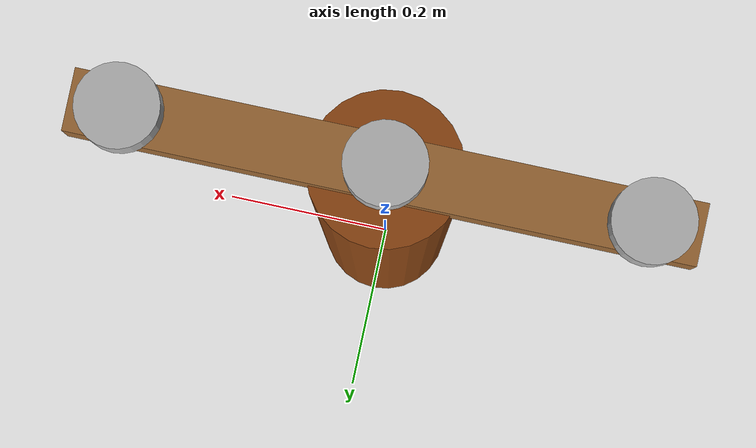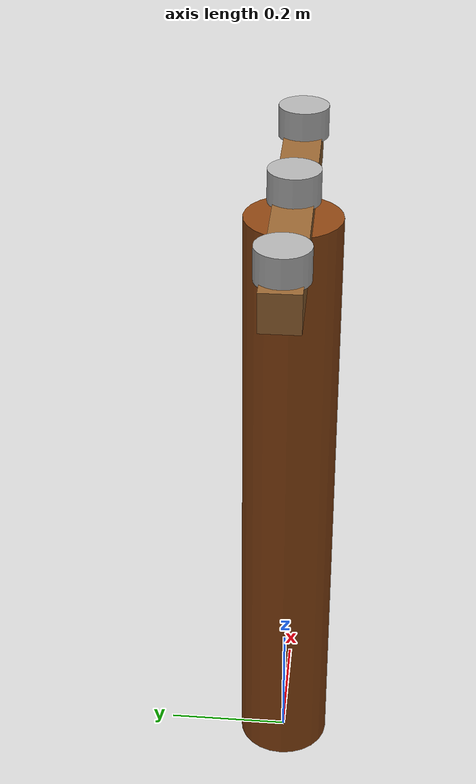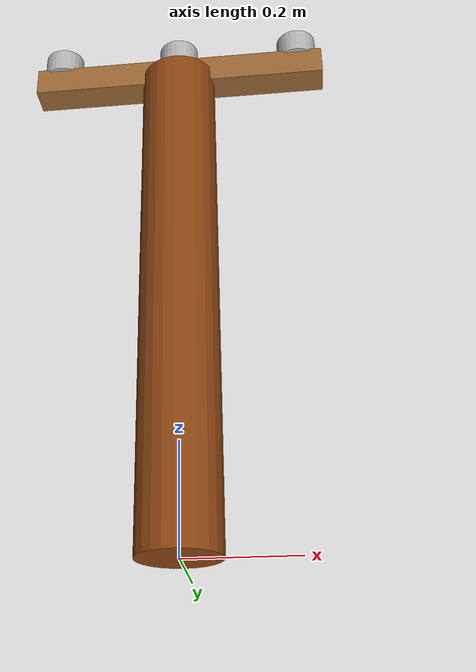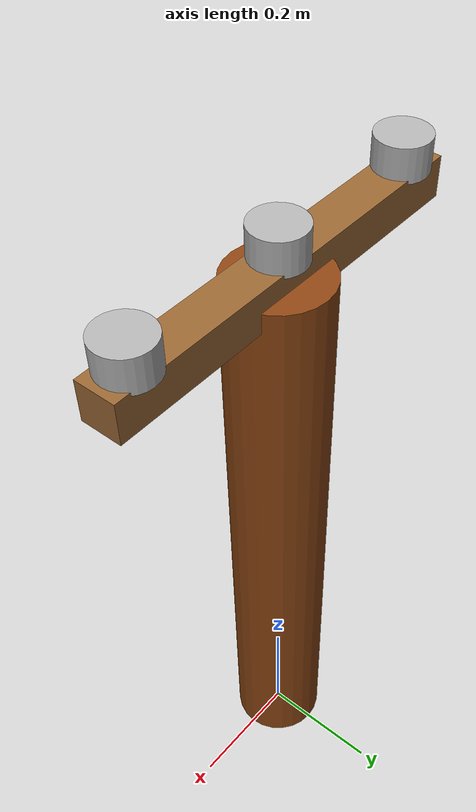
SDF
<sdf version="1.9">
  <model name="power_pole">
    <static>true</static>
    <pose>0 0 0 0 0 0</pose>

    <!-- Main wooden pole -->
    <link name="main_pole">
      <visual name="main_pole_visual">
        <geometry>
          <cylinder>
            <radius>0.075</radius>    <!-- 2.5x bigger -->
            <length>1.0</length>
          </cylinder>
        </geometry>
        <material>
          <!-- Wood-like color -->
          <ambient>0.55 0.27 0.07 1</ambient>
          <diffuse>0.55 0.27 0.07 1</diffuse>
          <specular>0.2 0.2 0.2 1</specular>
        </material>
        <pose>0 0 0.5 0 0 0</pose>
      </visual>
    </link>

    <!-- Crossarm -->
    <link name="crossarm">
      <visual name="crossarm_visual">
        <geometry>
          <box>
            <size>0.6 0.06 0.06</size>
          </box>
        </geometry>
        <material>
          <ambient>0.6 0.4 0.2 1</ambient>
          <diffuse>0.6 0.4 0.2 1</diffuse>
          <specular>0.3 0.3 0.3 1</specular>
        </material>
        <pose>0 0 1.0 0 0 0</pose>
      </visual>
    </link>

    <!-- Insulators (uniform light gray color) -->
    <link name="insulator_left">
      <visual name="insulator_left_visual">
        <geometry>
          <cylinder>
            <radius>0.04</radius>
            <length>0.05</length>
          </cylinder>
        </geometry>
        <material>
          <ambient>0.7 0.7 0.7 1</ambient>
          <diffuse>0.7 0.7 0.7 1</diffuse>
          <specular>0.9 0.9 0.9 1</specular>
        </material>
        <pose>-0.25 0 1.05 0 0 0</pose>
      </visual>
    </link>

    <link name="insulator_center">
      <visual name="insulator_center_visual">
        <geometry>
          <cylinder>
            <radius>0.04</radius>
            <length>0.05</length>
          </cylinder>
        </geometry>
        <material>
          <ambient>0.7 0.7 0.7 1</ambient>
          <diffuse>0.7 0.7 0.7 1</diffuse>
          <specular>0.9 0.9 0.9 1</specular>
        </material>
        <pose>0 0 1.05 0 0 0</pose>
      </visual>
    </link>

    <link name="insulator_right">
      <visual name="insulator_right_visual">
        <geometry>
          <cylinder>
            <radius>0.04</radius>
            <length>0.05</length>
          </cylinder>
        </geometry>
        <material>
          <ambient>0.7 0.7 0.7 1</ambient>
          <diffuse>0.7 0.7 0.7 1</diffuse>
          <specular>0.9 0.9 0.9 1</specular>
        </material>
        <pose>0.25 0 1.05 0 0 0</pose>
      </visual>
    </link>

  </model>
</sdf>
